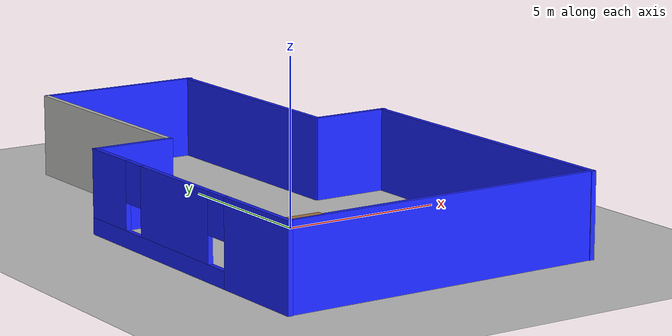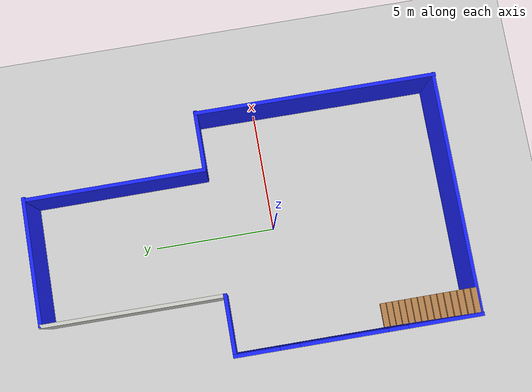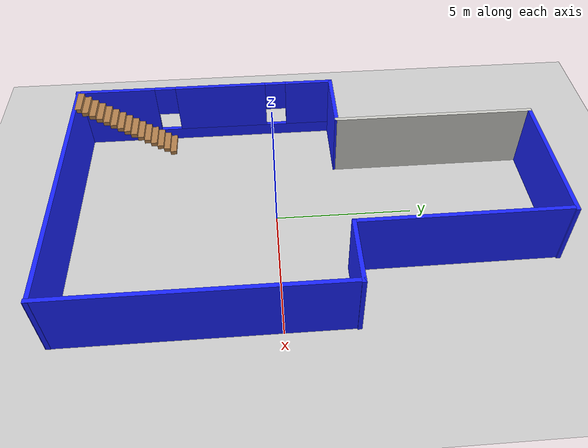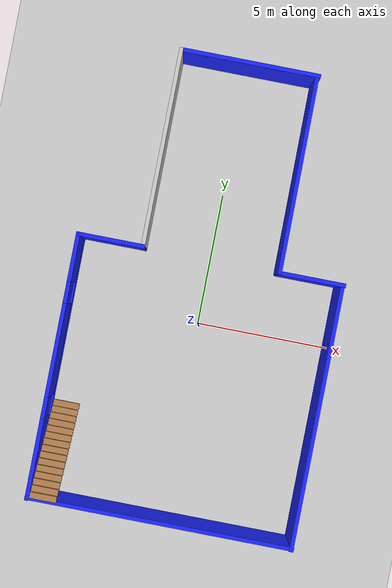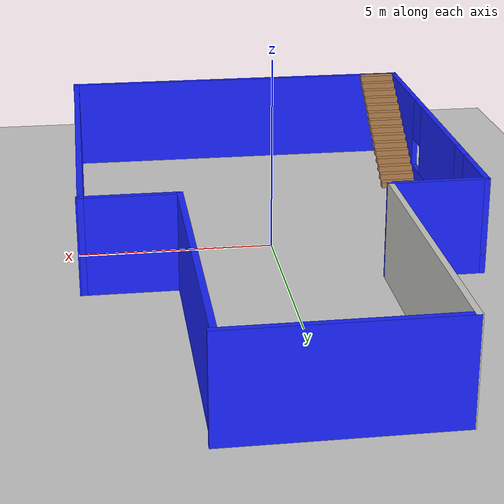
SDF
<sdf version="1.6">
 <world name="default">
  <model name="ground_plane">
   <static>1</static>
   <link name="link">
    <collision name="collision">
     <geometry><plane><normal>0 0 1</normal><size>100 100</size></plane></geometry>
     <surface><friction><ode><mu>100</mu><mu2>50</mu2></ode></friction></surface>
    </collision>
    <visual name="visual">
     <cast_shadows>0</cast_shadows>
     <geometry><plane><normal>0 0 1</normal><size>100 100</size></plane></geometry>
     <material>
      <script><uri>file://media/materials/scripts/gazebo.material</uri><name>Gazebo/Grey</name></script>
     </material>
    </visual>
   </link>
  </model>
  <model name="mySecondHouse_0">
   <link name="Stairs_0">
    <pose>-1.20208 -6.23735 0 0 -0 0</pose>
    <visual name="Stairs_0_Visual_0">
     <pose>-3.16225 4.7318 0.083333 0 -0 0</pose>
     <geometry><box><size>1 0.233333 0.166667</size></box></geometry>
     <material>
      <script><uri>file://media/materials/scripts/gazebo.material</uri><name>Gazebo/Wood</name></script>
      <ambient>1 1 1 1</ambient>
      <diffuse>1 1 1 1</diffuse>
      <specular>0.2 0.2 0.2 1</specular>
      <emissive>0 0 0 1</emissive>
     </material>
    </visual>
    <visual name="Stairs_0_Visual_1">
     <pose>-3.16225 4.49846 0.25 0 -0 0</pose>
     <geometry><box><size>1 0.233333 0.166667</size></box></geometry>
     <material>
      <script><uri>file://media/materials/scripts/gazebo.material</uri><name>Gazebo/Wood</name></script>
      <ambient>1 1 1 1</ambient>
      <diffuse>1 1 1 1</diffuse>
      <specular>0.2 0.2 0.2 1</specular>
      <emissive>0 0 0 1</emissive>
     </material>
    </visual>
    <visual name="Stairs_0_Visual_2">
     <pose>-3.16225 4.26513 0.416667 0 -0 0</pose>
     <geometry><box><size>1 0.233333 0.166667</size></box></geometry>
     <material>
      <script><uri>file://media/materials/scripts/gazebo.material</uri><name>Gazebo/Wood</name></script>
      <ambient>1 1 1 1</ambient>
      <diffuse>1 1 1 1</diffuse>
      <specular>0.2 0.2 0.2 1</specular>
      <emissive>0 0 0 1</emissive>
     </material>
    </visual>
    <visual name="Stairs_0_Visual_3">
     <pose>-3.16225 4.0318 0.583333 0 -0 0</pose>
     <geometry><box><size>1 0.233333 0.166667</size></box></geometry>
     <material>
      <script><uri>file://media/materials/scripts/gazebo.material</uri><name>Gazebo/Wood</name></script>
      <ambient>1 1 1 1</ambient>
      <diffuse>1 1 1 1</diffuse>
      <specular>0.2 0.2 0.2 1</specular>
      <emissive>0 0 0 1</emissive>
     </material>
    </visual>
    <visual name="Stairs_0_Visual_4">
     <pose>-3.16225 3.79846 0.75 0 -0 0</pose>
     <geometry><box><size>1 0.233333 0.166667</size></box></geometry>
     <material>
      <script><uri>file://media/materials/scripts/gazebo.material</uri><name>Gazebo/Wood</name></script>
      <ambient>1 1 1 1</ambient>
      <diffuse>1 1 1 1</diffuse>
      <specular>0.2 0.2 0.2 1</specular>
      <emissive>0 0 0 1</emissive>
     </material>
    </visual>
    <visual name="Stairs_0_Visual_5">
     <pose>-3.16225 3.56513 0.916667 0 -0 0</pose>
     <geometry><box><size>1 0.233333 0.166667</size></box></geometry>
     <material>
      <script><uri>file://media/materials/scripts/gazebo.material</uri><name>Gazebo/Wood</name></script>
      <ambient>1 1 1 1</ambient>
      <diffuse>1 1 1 1</diffuse>
      <specular>0.2 0.2 0.2 1</specular>
      <emissive>0 0 0 1</emissive>
     </material>
    </visual>
    <visual name="Stairs_0_Visual_6">
     <pose>-3.16225 3.3318 1.08333 0 -0 0</pose>
     <geometry><box><size>1 0.233333 0.166667</size></box></geometry>
     <material>
      <script><uri>file://media/materials/scripts/gazebo.material</uri><name>Gazebo/Wood</name></script>
      <ambient>1 1 1 1</ambient>
      <diffuse>1 1 1 1</diffuse>
      <specular>0.2 0.2 0.2 1</specular>
      <emissive>0 0 0 1</emissive>
     </material>
    </visual>
    <visual name="Stairs_0_Visual_7">
     <pose>-3.16225 3.09846 1.25 0 -0 0</pose>
     <geometry><box><size>1 0.233333 0.166667</size></box></geometry>
     <material>
      <script><uri>file://media/materials/scripts/gazebo.material</uri><name>Gazebo/Wood</name></script>
      <ambient>1 1 1 1</ambient>
      <diffuse>1 1 1 1</diffuse>
      <specular>0.2 0.2 0.2 1</specular>
      <emissive>0 0 0 1</emissive>
     </material>
    </visual>
    <visual name="Stairs_0_Visual_8">
     <pose>-3.16225 2.86513 1.41667 0 -0 0</pose>
     <geometry><box><size>1 0.233333 0.166667</size></box></geometry>
     <material>
      <script><uri>file://media/materials/scripts/gazebo.material</uri><name>Gazebo/Wood</name></script>
      <ambient>1 1 1 1</ambient>
      <diffuse>1 1 1 1</diffuse>
      <specular>0.2 0.2 0.2 1</specular>
      <emissive>0 0 0 1</emissive>
     </material>
    </visual>
    <visual name="Stairs_0_Visual_9">
     <pose>-3.16225 2.6318 1.58333 0 -0 0</pose>
     <geometry><box><size>1 0.233333 0.166667</size></box></geometry>
     <material>
      <script><uri>file://media/materials/scripts/gazebo.material</uri><name>Gazebo/Wood</name></script>
      <ambient>1 1 1 1</ambient>
      <diffuse>1 1 1 1</diffuse>
      <specular>0.2 0.2 0.2 1</specular>
      <emissive>0 0 0 1</emissive>
     </material>
    </visual>
    <visual name="Stairs_0_Visual_10">
     <pose>-3.16225 2.39846 1.75 0 -0 0</pose>
     <geometry><box><size>1 0.233333 0.166667</size></box></geometry>
     <material>
      <script><uri>file://media/materials/scripts/gazebo.material</uri><name>Gazebo/Wood</name></script>
      <ambient>1 1 1 1</ambient>
      <diffuse>1 1 1 1</diffuse>
      <specular>0.2 0.2 0.2 1</specular>
      <emissive>0 0 0 1</emissive>
     </material>
    </visual>
    <visual name="Stairs_0_Visual_11">
     <pose>-3.16225 2.16513 1.91667 0 -0 0</pose>
     <geometry><box><size>1 0.233333 0.166667</size></box></geometry>
     <material>
      <script><uri>file://media/materials/scripts/gazebo.material</uri><name>Gazebo/Wood</name></script>
      <ambient>1 1 1 1</ambient>
      <diffuse>1 1 1 1</diffuse>
      <specular>0.2 0.2 0.2 1</specular>
      <emissive>0 0 0 1</emissive>
     </material>
    </visual>
    <visual name="Stairs_0_Visual_12">
     <pose>-3.16225 1.9318 2.08333 0 -0 0</pose>
     <geometry><box><size>1 0.233333 0.166667</size></box></geometry>
     <material>
      <script><uri>file://media/materials/scripts/gazebo.material</uri><name>Gazebo/Wood</name></script>
      <ambient>1 1 1 1</ambient>
      <diffuse>1 1 1 1</diffuse>
      <specular>0.2 0.2 0.2 1</specular>
      <emissive>0 0 0 1</emissive>
     </material>
    </visual>
    <visual name="Stairs_0_Visual_13">
     <pose>-3.16225 1.69846 2.25 0 -0 0</pose>
     <geometry><box><size>1 0.233333 0.166667</size></box></geometry>
     <material>
      <script><uri>file://media/materials/scripts/gazebo.material</uri><name>Gazebo/Wood</name></script>
      <ambient>1 1 1 1</ambient>
      <diffuse>1 1 1 1</diffuse>
      <specular>0.2 0.2 0.2 1</specular>
      <emissive>0 0 0 1</emissive>
     </material>
    </visual>
    <visual name="Stairs_0_Visual_14">
     <pose>-3.16225 1.46513 2.41667 0 -0 0</pose>
     <geometry><box><size>1 0.233333 0.166667</size></box></geometry>
     <material>
      <script><uri>file://media/materials/scripts/gazebo.material</uri><name>Gazebo/Wood</name></script>
      <ambient>1 1 1 1</ambient>
      <diffuse>1 1 1 1</diffuse>
      <specular>0.2 0.2 0.2 1</specular>
      <emissive>0 0 0 1</emissive>
     </material>
    </visual>
    <collision name="Stairs_0_Collision_14">
     <pose>-3.16225 1.46513 2.41667 0 -0 0</pose>
     <geometry><box><size>1 0.233333 0.166667</size></box></geometry>
     <surface>
      <friction>
       <ode><mu>1</mu><mu2>1</mu2><fdir1>0 0 0</fdir1><slip1>0</slip1><slip2>0</slip2></ode>
       <torsional>
        <coefficient>1</coefficient>
        <patch_radius>0</patch_radius>
        <surface_radius>0</surface_radius>
        <use_patch_radius>1</use_patch_radius>
        <ode><slip>0</slip></ode>
       </torsional>
      </friction>
      <bounce><restitution_coefficient>0</restitution_coefficient><threshold>1e+06</threshold></bounce>
      <contact>
       <collide_without_contact>0</collide_without_contact>
       <collide_without_contact_bitmask>1</collide_without_contact_bitmask>
       <collide_bitmask>1</collide_bitmask>
       <ode>
        <soft_cfm>0</soft_cfm>
        <soft_erp>0.2</soft_erp>
        <kp>1e+13</kp>
        <kd>1</kd>
        <max_vel>0.01</max_vel>
        <min_depth>0</min_depth>
       </ode>
       <bullet>
        <split_impulse>1</split_impulse>
        <split_impulse_penetration_threshold>-0.01</split_impulse_penetration_threshold>
        <soft_cfm>0</soft_cfm>
        <soft_erp>0.2</soft_erp>
        <kp>1e+13</kp>
        <kd>1</kd>
       </bullet>
      </contact>
     </surface>
    </collision>
    <collision name="Stairs_0_Collision_0">
     <pose>-3.16225 4.7318 0.083333 0 -0 0</pose>
     <geometry><box><size>1 0.233333 0.166667</size></box></geometry>
     <surface>
      <friction>
       <ode><mu>1</mu><mu2>1</mu2><fdir1>0 0 0</fdir1><slip1>0</slip1><slip2>0</slip2></ode>
       <torsional>
        <coefficient>1</coefficient>
        <patch_radius>0</patch_radius>
        <surface_radius>0</surface_radius>
        <use_patch_radius>1</use_patch_radius>
        <ode><slip>0</slip></ode>
       </torsional>
      </friction>
      <bounce><restitution_coefficient>0</restitution_coefficient><threshold>1e+06</threshold></bounce>
      <contact>
       <collide_without_contact>0</collide_without_contact>
       <collide_without_contact_bitmask>1</collide_without_contact_bitmask>
       <collide_bitmask>1</collide_bitmask>
       <ode>
        <soft_cfm>0</soft_cfm>
        <soft_erp>0.2</soft_erp>
        <kp>1e+13</kp>
        <kd>1</kd>
        <max_vel>0.01</max_vel>
        <min_depth>0</min_depth>
       </ode>
       <bullet>
        <split_impulse>1</split_impulse>
        <split_impulse_penetration_threshold>-0.01</split_impulse_penetration_threshold>
        <soft_cfm>0</soft_cfm>
        <soft_erp>0.2</soft_erp>
        <kp>1e+13</kp>
        <kd>1</kd>
       </bullet>
      </contact>
     </surface>
    </collision>
    <collision name="Stairs_0_Collision_1">
     <pose>-3.16225 4.49846 0.25 0 -0 0</pose>
     <geometry><box><size>1 0.233333 0.166667</size></box></geometry>
     <surface>
      <friction>
       <ode><mu>1</mu><mu2>1</mu2><fdir1>0 0 0</fdir1><slip1>0</slip1><slip2>0</slip2></ode>
       <torsional>
        <coefficient>1</coefficient>
        <patch_radius>0</patch_radius>
        <surface_radius>0</surface_radius>
        <use_patch_radius>1</use_patch_radius>
        <ode><slip>0</slip></ode>
       </torsional>
      </friction>
      <bounce><restitution_coefficient>0</restitution_coefficient><threshold>1e+06</threshold></bounce>
      <contact>
       <collide_without_contact>0</collide_without_contact>
       <collide_without_contact_bitmask>1</collide_without_contact_bitmask>
       <collide_bitmask>1</collide_bitmask>
       <ode>
        <soft_cfm>0</soft_cfm>
        <soft_erp>0.2</soft_erp>
        <kp>1e+13</kp>
        <kd>1</kd>
        <max_vel>0.01</max_vel>
        <min_depth>0</min_depth>
       </ode>
       <bullet>
        <split_impulse>1</split_impulse>
        <split_impulse_penetration_threshold>-0.01</split_impulse_penetration_threshold>
        <soft_cfm>0</soft_cfm>
        <soft_erp>0.2</soft_erp>
        <kp>1e+13</kp>
        <kd>1</kd>
       </bullet>
      </contact>
     </surface>
    </collision>
    <collision name="Stairs_0_Collision_2">
     <pose>-3.16225 4.26513 0.416667 0 -0 0</pose>
     <geometry><box><size>1 0.233333 0.166667</size></box></geometry>
     <surface>
      <friction>
       <ode><mu>1</mu><mu2>1</mu2><fdir1>0 0 0</fdir1><slip1>0</slip1><slip2>0</slip2></ode>
       <torsional>
        <coefficient>1</coefficient>
        <patch_radius>0</patch_radius>
        <surface_radius>0</surface_radius>
        <use_patch_radius>1</use_patch_radius>
        <ode><slip>0</slip></ode>
       </torsional>
      </friction>
      <bounce><restitution_coefficient>0</restitution_coefficient><threshold>1e+06</threshold></bounce>
      <contact>
       <collide_without_contact>0</collide_without_contact>
       <collide_without_contact_bitmask>1</collide_without_contact_bitmask>
       <collide_bitmask>1</collide_bitmask>
       <ode>
        <soft_cfm>0</soft_cfm>
        <soft_erp>0.2</soft_erp>
        <kp>1e+13</kp>
        <kd>1</kd>
        <max_vel>0.01</max_vel>
        <min_depth>0</min_depth>
       </ode>
       <bullet>
        <split_impulse>1</split_impulse>
        <split_impulse_penetration_threshold>-0.01</split_impulse_penetration_threshold>
        <soft_cfm>0</soft_cfm>
        <soft_erp>0.2</soft_erp>
        <kp>1e+13</kp>
        <kd>1</kd>
       </bullet>
      </contact>
     </surface>
    </collision>
    <collision name="Stairs_0_Collision_3">
     <pose>-3.16225 4.0318 0.583333 0 -0 0</pose>
     <geometry><box><size>1 0.233333 0.166667</size></box></geometry>
     <surface>
      <friction>
       <ode><mu>1</mu><mu2>1</mu2><fdir1>0 0 0</fdir1><slip1>0</slip1><slip2>0</slip2></ode>
       <torsional>
        <coefficient>1</coefficient>
        <patch_radius>0</patch_radius>
        <surface_radius>0</surface_radius>
        <use_patch_radius>1</use_patch_radius>
        <ode><slip>0</slip></ode>
       </torsional>
      </friction>
      <bounce><restitution_coefficient>0</restitution_coefficient><threshold>1e+06</threshold></bounce>
      <contact>
       <collide_without_contact>0</collide_without_contact>
       <collide_without_contact_bitmask>1</collide_without_contact_bitmask>
       <collide_bitmask>1</collide_bitmask>
       <ode>
        <soft_cfm>0</soft_cfm>
        <soft_erp>0.2</soft_erp>
        <kp>1e+13</kp>
        <kd>1</kd>
        <max_vel>0.01</max_vel>
        <min_depth>0</min_depth>
       </ode>
       <bullet>
        <split_impulse>1</split_impulse>
        <split_impulse_penetration_threshold>-0.01</split_impulse_penetration_threshold>
        <soft_cfm>0</soft_cfm>
        <soft_erp>0.2</soft_erp>
        <kp>1e+13</kp>
        <kd>1</kd>
       </bullet>
      </contact>
     </surface>
    </collision>
    <collision name="Stairs_0_Collision_5">
     <pose>-3.16225 3.56513 0.916667 0 -0 0</pose>
     <geometry><box><size>1 0.233333 0.166667</size></box></geometry>
     <surface>
      <friction>
       <ode><mu>1</mu><mu2>1</mu2><fdir1>0 0 0</fdir1><slip1>0</slip1><slip2>0</slip2></ode>
       <torsional>
        <coefficient>1</coefficient>
        <patch_radius>0</patch_radius>
        <surface_radius>0</surface_radius>
        <use_patch_radius>1</use_patch_radius>
        <ode><slip>0</slip></ode>
       </torsional>
      </friction>
      <bounce><restitution_coefficient>0</restitution_coefficient><threshold>1e+06</threshold></bounce>
      <contact>
       <collide_without_contact>0</collide_without_contact>
       <collide_without_contact_bitmask>1</collide_without_contact_bitmask>
       <collide_bitmask>1</collide_bitmask>
       <ode>
        <soft_cfm>0</soft_cfm>
        <soft_erp>0.2</soft_erp>
        <kp>1e+13</kp>
        <kd>1</kd>
        <max_vel>0.01</max_vel>
        <min_depth>0</min_depth>
       </ode>
       <bullet>
        <split_impulse>1</split_impulse>
        <split_impulse_penetration_threshold>-0.01</split_impulse_penetration_threshold>
        <soft_cfm>0</soft_cfm>
        <soft_erp>0.2</soft_erp>
        <kp>1e+13</kp>
        <kd>1</kd>
       </bullet>
      </contact>
     </surface>
    </collision>
    <collision name="Stairs_0_Collision_6">
     <pose>-3.16225 3.3318 1.08333 0 -0 0</pose>
     <geometry><box><size>1 0.233333 0.166667</size></box></geometry>
     <surface>
      <friction>
       <ode><mu>1</mu><mu2>1</mu2><fdir1>0 0 0</fdir1><slip1>0</slip1><slip2>0</slip2></ode>
       <torsional>
        <coefficient>1</coefficient>
        <patch_radius>0</patch_radius>
        <surface_radius>0</surface_radius>
        <use_patch_radius>1</use_patch_radius>
        <ode><slip>0</slip></ode>
       </torsional>
      </friction>
      <bounce><restitution_coefficient>0</restitution_coefficient><threshold>1e+06</threshold></bounce>
      <contact>
       <collide_without_contact>0</collide_without_contact>
       <collide_without_contact_bitmask>1</collide_without_contact_bitmask>
       <collide_bitmask>1</collide_bitmask>
       <ode>
        <soft_cfm>0</soft_cfm>
        <soft_erp>0.2</soft_erp>
        <kp>1e+13</kp>
        <kd>1</kd>
        <max_vel>0.01</max_vel>
        <min_depth>0</min_depth>
       </ode>
       <bullet>
        <split_impulse>1</split_impulse>
        <split_impulse_penetration_threshold>-0.01</split_impulse_penetration_threshold>
        <soft_cfm>0</soft_cfm>
        <soft_erp>0.2</soft_erp>
        <kp>1e+13</kp>
        <kd>1</kd>
       </bullet>
      </contact>
     </surface>
    </collision>
    <collision name="Stairs_0_Collision_4">
     <pose>-3.16225 3.79846 0.75 0 -0 0</pose>
     <geometry><box><size>1 0.233333 0.166667</size></box></geometry>
     <surface>
      <friction>
       <ode><mu>1</mu><mu2>1</mu2><fdir1>0 0 0</fdir1><slip1>0</slip1><slip2>0</slip2></ode>
       <torsional>
        <coefficient>1</coefficient>
        <patch_radius>0</patch_radius>
        <surface_radius>0</surface_radius>
        <use_patch_radius>1</use_patch_radius>
        <ode><slip>0</slip></ode>
       </torsional>
      </friction>
      <bounce><restitution_coefficient>0</restitution_coefficient><threshold>1e+06</threshold></bounce>
      <contact>
       <collide_without_contact>0</collide_without_contact>
       <collide_without_contact_bitmask>1</collide_without_contact_bitmask>
       <collide_bitmask>1</collide_bitmask>
       <ode>
        <soft_cfm>0</soft_cfm>
        <soft_erp>0.2</soft_erp>
        <kp>1e+13</kp>
        <kd>1</kd>
        <max_vel>0.01</max_vel>
        <min_depth>0</min_depth>
       </ode>
       <bullet>
        <split_impulse>1</split_impulse>
        <split_impulse_penetration_threshold>-0.01</split_impulse_penetration_threshold>
        <soft_cfm>0</soft_cfm>
        <soft_erp>0.2</soft_erp>
        <kp>1e+13</kp>
        <kd>1</kd>
       </bullet>
      </contact>
     </surface>
    </collision>
    <collision name="Stairs_0_Collision_9">
     <pose>-3.16225 2.6318 1.58333 0 -0 0</pose>
     <geometry><box><size>1 0.233333 0.166667</size></box></geometry>
     <surface>
      <friction>
       <ode><mu>1</mu><mu2>1</mu2><fdir1>0 0 0</fdir1><slip1>0</slip1><slip2>0</slip2></ode>
       <torsional>
        <coefficient>1</coefficient>
        <patch_radius>0</patch_radius>
        <surface_radius>0</surface_radius>
        <use_patch_radius>1</use_patch_radius>
        <ode><slip>0</slip></ode>
       </torsional>
      </friction>
      <bounce><restitution_coefficient>0</restitution_coefficient><threshold>1e+06</threshold></bounce>
      <contact>
       <collide_without_contact>0</collide_without_contact>
       <collide_without_contact_bitmask>1</collide_without_contact_bitmask>
       <collide_bitmask>1</collide_bitmask>
       <ode>
        <soft_cfm>0</soft_cfm>
        <soft_erp>0.2</soft_erp>
        <kp>1e+13</kp>
        <kd>1</kd>
        <max_vel>0.01</max_vel>
        <min_depth>0</min_depth>
       </ode>
       <bullet>
        <split_impulse>1</split_impulse>
        <split_impulse_penetration_threshold>-0.01</split_impulse_penetration_threshold>
        <soft_cfm>0</soft_cfm>
        <soft_erp>0.2</soft_erp>
        <kp>1e+13</kp>
        <kd>1</kd>
       </bullet>
      </contact>
     </surface>
    </collision>
    <collision name="Stairs_0_Collision_7">
     <pose>-3.16225 3.09846 1.25 0 -0 0</pose>
     <geometry><box><size>1 0.233333 0.166667</size></box></geometry>
     <surface>
      <friction>
       <ode><mu>1</mu><mu2>1</mu2><fdir1>0 0 0</fdir1><slip1>0</slip1><slip2>0</slip2></ode>
       <torsional>
        <coefficient>1</coefficient>
        <patch_radius>0</patch_radius>
        <surface_radius>0</surface_radius>
        <use_patch_radius>1</use_patch_radius>
        <ode><slip>0</slip></ode>
       </torsional>
      </friction>
      <bounce><restitution_coefficient>0</restitution_coefficient><threshold>1e+06</threshold></bounce>
      <contact>
       <collide_without_contact>0</collide_without_contact>
       <collide_without_contact_bitmask>1</collide_without_contact_bitmask>
       <collide_bitmask>1</collide_bitmask>
       <ode>
        <soft_cfm>0</soft_cfm>
        <soft_erp>0.2</soft_erp>
        <kp>1e+13</kp>
        <kd>1</kd>
        <max_vel>0.01</max_vel>
        <min_depth>0</min_depth>
       </ode>
       <bullet>
        <split_impulse>1</split_impulse>
        <split_impulse_penetration_threshold>-0.01</split_impulse_penetration_threshold>
        <soft_cfm>0</soft_cfm>
        <soft_erp>0.2</soft_erp>
        <kp>1e+13</kp>
        <kd>1</kd>
       </bullet>
      </contact>
     </surface>
    </collision>
    <collision name="Stairs_0_Collision_8">
     <pose>-3.16225 2.86513 1.41667 0 -0 0</pose>
     <geometry><box><size>1 0.233333 0.166667</size></box></geometry>
     <surface>
      <friction>
       <ode><mu>1</mu><mu2>1</mu2><fdir1>0 0 0</fdir1><slip1>0</slip1><slip2>0</slip2></ode>
       <torsional>
        <coefficient>1</coefficient>
        <patch_radius>0</patch_radius>
        <surface_radius>0</surface_radius>
        <use_patch_radius>1</use_patch_radius>
        <ode><slip>0</slip></ode>
       </torsional>
      </friction>
      <bounce><restitution_coefficient>0</restitution_coefficient><threshold>1e+06</threshold></bounce>
      <contact>
       <collide_without_contact>0</collide_without_contact>
       <collide_without_contact_bitmask>1</collide_without_contact_bitmask>
       <collide_bitmask>1</collide_bitmask>
       <ode>
        <soft_cfm>0</soft_cfm>
        <soft_erp>0.2</soft_erp>
        <kp>1e+13</kp>
        <kd>1</kd>
        <max_vel>0.01</max_vel>
        <min_depth>0</min_depth>
       </ode>
       <bullet>
        <split_impulse>1</split_impulse>
        <split_impulse_penetration_threshold>-0.01</split_impulse_penetration_threshold>
        <soft_cfm>0</soft_cfm>
        <soft_erp>0.2</soft_erp>
        <kp>1e+13</kp>
        <kd>1</kd>
       </bullet>
      </contact>
     </surface>
    </collision>
    <collision name="Stairs_0_Collision_10">
     <pose>-3.16225 2.39846 1.75 0 -0 0</pose>
     <geometry><box><size>1 0.233333 0.166667</size></box></geometry>
     <surface>
      <friction>
       <ode><mu>1</mu><mu2>1</mu2><fdir1>0 0 0</fdir1><slip1>0</slip1><slip2>0</slip2></ode>
       <torsional>
        <coefficient>1</coefficient>
        <patch_radius>0</patch_radius>
        <surface_radius>0</surface_radius>
        <use_patch_radius>1</use_patch_radius>
        <ode><slip>0</slip></ode>
       </torsional>
      </friction>
      <bounce><restitution_coefficient>0</restitution_coefficient><threshold>1e+06</threshold></bounce>
      <contact>
       <collide_without_contact>0</collide_without_contact>
       <collide_without_contact_bitmask>1</collide_without_contact_bitmask>
       <collide_bitmask>1</collide_bitmask>
       <ode>
        <soft_cfm>0</soft_cfm>
        <soft_erp>0.2</soft_erp>
        <kp>1e+13</kp>
        <kd>1</kd>
        <max_vel>0.01</max_vel>
        <min_depth>0</min_depth>
       </ode>
       <bullet>
        <split_impulse>1</split_impulse>
        <split_impulse_penetration_threshold>-0.01</split_impulse_penetration_threshold>
        <soft_cfm>0</soft_cfm>
        <soft_erp>0.2</soft_erp>
        <kp>1e+13</kp>
        <kd>1</kd>
       </bullet>
      </contact>
     </surface>
    </collision>
    <collision name="Stairs_0_Collision_11">
     <pose>-3.16225 2.16513 1.91667 0 -0 0</pose>
     <geometry><box><size>1 0.233333 0.166667</size></box></geometry>
     <surface>
      <friction>
       <ode><mu>1</mu><mu2>1</mu2><fdir1>0 0 0</fdir1><slip1>0</slip1><slip2>0</slip2></ode>
       <torsional>
        <coefficient>1</coefficient>
        <patch_radius>0</patch_radius>
        <surface_radius>0</surface_radius>
        <use_patch_radius>1</use_patch_radius>
        <ode><slip>0</slip></ode>
       </torsional>
      </friction>
      <bounce><restitution_coefficient>0</restitution_coefficient><threshold>1e+06</threshold></bounce>
      <contact>
       <collide_without_contact>0</collide_without_contact>
       <collide_without_contact_bitmask>1</collide_without_contact_bitmask>
       <collide_bitmask>1</collide_bitmask>
       <ode>
        <soft_cfm>0</soft_cfm>
        <soft_erp>0.2</soft_erp>
        <kp>1e+13</kp>
        <kd>1</kd>
        <max_vel>0.01</max_vel>
        <min_depth>0</min_depth>
       </ode>
       <bullet>
        <split_impulse>1</split_impulse>
        <split_impulse_penetration_threshold>-0.01</split_impulse_penetration_threshold>
        <soft_cfm>0</soft_cfm>
        <soft_erp>0.2</soft_erp>
        <kp>1e+13</kp>
        <kd>1</kd>
       </bullet>
      </contact>
     </surface>
    </collision>
    <collision name="Stairs_0_Collision_12">
     <pose>-3.16225 1.9318 2.08333 0 -0 0</pose>
     <geometry><box><size>1 0.233333 0.166667</size></box></geometry>
     <surface>
      <friction>
       <ode><mu>1</mu><mu2>1</mu2><fdir1>0 0 0</fdir1><slip1>0</slip1><slip2>0</slip2></ode>
       <torsional>
        <coefficient>1</coefficient>
        <patch_radius>0</patch_radius>
        <surface_radius>0</surface_radius>
        <use_patch_radius>1</use_patch_radius>
        <ode><slip>0</slip></ode>
       </torsional>
      </friction>
      <bounce><restitution_coefficient>0</restitution_coefficient><threshold>1e+06</threshold></bounce>
      <contact>
       <collide_without_contact>0</collide_without_contact>
       <collide_without_contact_bitmask>1</collide_without_contact_bitmask>
       <collide_bitmask>1</collide_bitmask>
       <ode>
        <soft_cfm>0</soft_cfm>
        <soft_erp>0.2</soft_erp>
        <kp>1e+13</kp>
        <kd>1</kd>
        <max_vel>0.01</max_vel>
        <min_depth>0</min_depth>
       </ode>
       <bullet>
        <split_impulse>1</split_impulse>
        <split_impulse_penetration_threshold>-0.01</split_impulse_penetration_threshold>
        <soft_cfm>0</soft_cfm>
        <soft_erp>0.2</soft_erp>
        <kp>1e+13</kp>
        <kd>1</kd>
       </bullet>
      </contact>
     </surface>
    </collision>
    <collision name="Stairs_0_Collision_13">
     <pose>-3.16225 1.69846 2.25 0 -0 0</pose>
     <geometry><box><size>1 0.233333 0.166667</size></box></geometry>
     <surface>
      <friction>
       <ode><mu>1</mu><mu2>1</mu2><fdir1>0 0 0</fdir1><slip1>0</slip1><slip2>0</slip2></ode>
       <torsional>
        <coefficient>1</coefficient>
        <patch_radius>0</patch_radius>
        <surface_radius>0</surface_radius>
        <use_patch_radius>1</use_patch_radius>
        <ode><slip>0</slip></ode>
       </torsional>
      </friction>
      <bounce><restitution_coefficient>0</restitution_coefficient><threshold>1e+06</threshold></bounce>
      <contact>
       <collide_without_contact>0</collide_without_contact>
       <collide_without_contact_bitmask>1</collide_without_contact_bitmask>
       <collide_bitmask>1</collide_bitmask>
       <ode>
        <soft_cfm>0</soft_cfm>
        <soft_erp>0.2</soft_erp>
        <kp>1e+13</kp>
        <kd>1</kd>
        <max_vel>0.01</max_vel>
        <min_depth>0</min_depth>
       </ode>
       <bullet>
        <split_impulse>1</split_impulse>
        <split_impulse_penetration_threshold>-0.01</split_impulse_penetration_threshold>
        <soft_cfm>0</soft_cfm>
        <soft_erp>0.2</soft_erp>
        <kp>1e+13</kp>
        <kd>1</kd>
       </bullet>
      </contact>
     </surface>
    </collision>
   </link>
   <link name="Wall_26">
    <pose>-3.71974 4.925 0 0 -0 0</pose>
    <visual name="Wall_26_Visual">
     <pose>0 0 1.25 0 -0 0</pose>
     <geometry><box><size>2.5 0.15 2.5</size></box></geometry>
     <material>
      <script><uri>file://media/materials/scripts/gazebo.material</uri><name>Gazebo/Grey</name></script>
      <ambient>0.0980392 0.141176 1 1</ambient>
      <diffuse>0.7 0.7 0.7 1</diffuse>
      <specular>0.01 0.01 0.01 1</specular>
      <emissive>0 0 0 1</emissive>
     </material>
    </visual>
    <collision name="Wall_26_Collision">
     <pose>0 0 1.25 0 -0 0</pose>
     <geometry><box><size>2.5 0.15 2.5</size></box></geometry>
     <surface>
      <friction>
       <ode><mu>1</mu><mu2>1</mu2><fdir1>0 0 0</fdir1><slip1>0</slip1><slip2>0</slip2></ode>
       <torsional>
        <coefficient>1</coefficient>
        <patch_radius>0</patch_radius>
        <surface_radius>0</surface_radius>
        <use_patch_radius>1</use_patch_radius>
        <ode><slip>0</slip></ode>
       </torsional>
      </friction>
      <bounce><restitution_coefficient>0</restitution_coefficient><threshold>1e+06</threshold></bounce>
      <contact>
       <collide_without_contact>0</collide_without_contact>
       <collide_without_contact_bitmask>1</collide_without_contact_bitmask>
       <collide_bitmask>1</collide_bitmask>
       <ode>
        <soft_cfm>0</soft_cfm>
        <soft_erp>0.2</soft_erp>
        <kp>1e+13</kp>
        <kd>1</kd>
        <max_vel>0.01</max_vel>
        <min_depth>0</min_depth>
       </ode>
       <bullet>
        <split_impulse>1</split_impulse>
        <split_impulse_penetration_threshold>-0.01</split_impulse_penetration_threshold>
        <soft_cfm>0</soft_cfm>
        <soft_erp>0.2</soft_erp>
        <kp>1e+13</kp>
        <kd>1</kd>
       </bullet>
      </contact>
     </surface>
    </collision>
   </link>
   <link name="Wall_27">
    <pose>-2.54213 8.59143 0 0 0 -1.57151</pose>
    <inertial>
     <inertia><ixx>nan</ixx><ixy>0</ixy><ixz>0</ixz><iyy>nan</iyy><iyz>0</iyz><izz>nan</izz></inertia>
     <mass>0</mass>
    </inertial>
    <visual name="Wall_27_Visual">
     <pose>0 0 1.25 0 -0 0</pose>
     <geometry><box><size>7.48003 0.15 2.5</size></box></geometry>
     <material>
      <script><uri>file://media/materials/scripts/gazebo.material</uri><name>Gazebo/CeilingTiled</name></script>
      <ambient>0.0980392 0.141176 1 1</ambient>
      <diffuse>1 1 1 1</diffuse>
      <specular>0 0 0 1</specular>
      <emissive>0 0 0 1</emissive>
     </material>
    </visual>
    <collision name="Wall_27_Collision">
     <pose>0 0 1.25 0 -0 0</pose>
     <geometry><box><size>7.48003 0.15 2.5</size></box></geometry>
     <surface>
      <friction>
       <ode><mu>1</mu><mu2>1</mu2><fdir1>0 0 0</fdir1><slip1>0</slip1><slip2>0</slip2></ode>
       <torsional>
        <coefficient>1</coefficient>
        <patch_radius>0</patch_radius>
        <surface_radius>0</surface_radius>
        <use_patch_radius>1</use_patch_radius>
        <ode><slip>0</slip></ode>
       </torsional>
      </friction>
      <bounce><restitution_coefficient>0</restitution_coefficient><threshold>1e+06</threshold></bounce>
      <contact>
       <collide_without_contact>0</collide_without_contact>
       <collide_without_contact_bitmask>1</collide_without_contact_bitmask>
       <collide_bitmask>1</collide_bitmask>
       <ode>
        <soft_cfm>0</soft_cfm>
        <soft_erp>0.2</soft_erp>
        <kp>1e+13</kp>
        <kd>1</kd>
        <max_vel>0.01</max_vel>
        <min_depth>0</min_depth>
       </ode>
       <bullet>
        <split_impulse>1</split_impulse>
        <split_impulse_penetration_threshold>-0.01</split_impulse_penetration_threshold>
        <soft_cfm>0</soft_cfm>
        <soft_erp>0.2</soft_erp>
        <kp>1e+13</kp>
        <kd>1</kd>
       </bullet>
      </contact>
     </surface>
    </collision>
   </link>
   <link name="Wall_28">
    <pose>0.035567 12.2589 0 0 -0 0</pose>
    <visual name="Wall_28_Visual">
     <pose>0 0 1.25 0 -0 0</pose>
     <geometry><box><size>5.25 0.15 2.5</size></box></geometry>
     <material>
      <script><uri>file://media/materials/scripts/gazebo.material</uri><name>Gazebo/Grey</name></script>
      <ambient>0.0980392 0.141176 1 1</ambient>
      <diffuse>0.7 0.7 0.7 1</diffuse>
      <specular>0.01 0.01 0.01 1</specular>
      <emissive>0 0 0 1</emissive>
     </material>
    </visual>
    <collision name="Wall_28_Collision">
     <pose>0 0 1.25 0 -0 0</pose>
     <geometry><box><size>5.25 0.15 2.5</size></box></geometry>
     <surface>
      <friction>
       <ode><mu>1</mu><mu2>1</mu2><fdir1>0 0 0</fdir1><slip1>0</slip1><slip2>0</slip2></ode>
       <torsional>
        <coefficient>1</coefficient>
        <patch_radius>0</patch_radius>
        <surface_radius>0</surface_radius>
        <use_patch_radius>1</use_patch_radius>
        <ode><slip>0</slip></ode>
       </torsional>
      </friction>
      <bounce><restitution_coefficient>0</restitution_coefficient><threshold>1e+06</threshold></bounce>
      <contact>
       <collide_without_contact>0</collide_without_contact>
       <collide_without_contact_bitmask>1</collide_without_contact_bitmask>
       <collide_bitmask>1</collide_bitmask>
       <ode>
        <soft_cfm>0</soft_cfm>
        <soft_erp>0.2</soft_erp>
        <kp>1e+13</kp>
        <kd>1</kd>
        <max_vel>0.01</max_vel>
        <min_depth>0</min_depth>
       </ode>
       <bullet>
        <split_impulse>1</split_impulse>
        <split_impulse_penetration_threshold>-0.01</split_impulse_penetration_threshold>
        <soft_cfm>0</soft_cfm>
        <soft_erp>0.2</soft_erp>
        <kp>1e+13</kp>
        <kd>1</kd>
       </bullet>
      </contact>
     </surface>
    </collision>
   </link>
   <link name="Wall_29">
    <pose>2.54684 8.53962 0 0 -0 1.57417</pose>
    <inertial>
     <inertia><ixx>nan</ixx><ixy>0</ixy><ixz>0</ixz><iyy>nan</iyy><iyz>0</iyz><izz>nan</izz></inertia>
     <mass>0</mass>
    </inertial>
    <visual name="Wall_29_Visual">
     <pose>0 0 1.25 0 -0 0</pose>
     <geometry><box><size>7.33027 0.15 2.5</size></box></geometry>
     <material>
      <script><uri>file://media/materials/scripts/gazebo.material</uri><name>Gazebo/Grey</name></script>
      <ambient>0.0980392 0.141176 1 1</ambient>
      <diffuse>0.7 0.7 0.7 1</diffuse>
      <specular>0.01 0.01 0.01 1</specular>
      <emissive>0 0 0 1</emissive>
     </material>
    </visual>
    <collision name="Wall_29_Collision">
     <pose>0 0 1.25 0 -0 0</pose>
     <geometry><box><size>7.33027 0.15 2.5</size></box></geometry>
     <surface>
      <friction>
       <ode><mu>1</mu><mu2>1</mu2><fdir1>0 0 0</fdir1><slip1>0</slip1><slip2>0</slip2></ode>
       <torsional>
        <coefficient>1</coefficient>
        <patch_radius>0</patch_radius>
        <surface_radius>0</surface_radius>
        <use_patch_radius>1</use_patch_radius>
        <ode><slip>0</slip></ode>
       </torsional>
      </friction>
      <bounce><restitution_coefficient>0</restitution_coefficient><threshold>1e+06</threshold></bounce>
      <contact>
       <collide_without_contact>0</collide_without_contact>
       <collide_without_contact_bitmask>1</collide_without_contact_bitmask>
       <collide_bitmask>1</collide_bitmask>
       <ode>
        <soft_cfm>0</soft_cfm>
        <soft_erp>0.2</soft_erp>
        <kp>1e+13</kp>
        <kd>1</kd>
        <max_vel>0.01</max_vel>
        <min_depth>0</min_depth>
       </ode>
       <bullet>
        <split_impulse>1</split_impulse>
        <split_impulse_penetration_threshold>-0.01</split_impulse_penetration_threshold>
        <soft_cfm>0</soft_cfm>
        <soft_erp>0.2</soft_erp>
        <kp>1e+13</kp>
        <kd>1</kd>
       </bullet>
      </contact>
     </surface>
    </collision>
   </link>
   <link name="Wall_30">
    <pose>3.77003 4.925 0 0 -0 0</pose>
    <visual name="Wall_30_Visual">
     <pose>0 0 1.25 0 -0 0</pose>
     <geometry><box><size>2.5 0.15 2.5</size></box></geometry>
     <material>
      <script><uri>file://media/materials/scripts/gazebo.material</uri><name>Gazebo/Grey</name></script>
      <ambient>0.0980392 0.141176 1 1</ambient>
      <diffuse>0.7 0.7 0.7 1</diffuse>
      <specular>0.01 0.01 0.01 1</specular>
      <emissive>0 0 0 1</emissive>
     </material>
    </visual>
    <collision name="Wall_30_Collision">
     <pose>0 0 1.25 0 -0 0</pose>
     <geometry><box><size>2.5 0.15 2.5</size></box></geometry>
     <surface>
      <friction>
       <ode><mu>1</mu><mu2>1</mu2><fdir1>0 0 0</fdir1><slip1>0</slip1><slip2>0</slip2></ode>
       <torsional>
        <coefficient>1</coefficient>
        <patch_radius>0</patch_radius>
        <surface_radius>0</surface_radius>
        <use_patch_radius>1</use_patch_radius>
        <ode><slip>0</slip></ode>
       </torsional>
      </friction>
      <bounce><restitution_coefficient>0</restitution_coefficient><threshold>1e+06</threshold></bounce>
      <contact>
       <collide_without_contact>0</collide_without_contact>
       <collide_without_contact_bitmask>1</collide_without_contact_bitmask>
       <collide_bitmask>1</collide_bitmask>
       <ode>
        <soft_cfm>0</soft_cfm>
        <soft_erp>0.2</soft_erp>
        <kp>1e+13</kp>
        <kd>1</kd>
        <max_vel>0.01</max_vel>
        <min_depth>0</min_depth>
       </ode>
       <bullet>
        <split_impulse>1</split_impulse>
        <split_impulse_penetration_threshold>-0.01</split_impulse_penetration_threshold>
        <soft_cfm>0</soft_cfm>
        <soft_erp>0.2</soft_erp>
        <kp>1e+13</kp>
        <kd>1</kd>
       </bullet>
      </contact>
     </surface>
    </collision>
   </link>
   <link name="Wall_31">
    <pose>4.90715 0 0 0 0 -1.57118</pose>
    <visual name="Wall_31_Visual">
     <pose>0 0 1.25 0 -0 0</pose>
     <geometry><box><size>10.0006 0.15 2.5</size></box></geometry>
     <material>
      <script><uri>file://media/materials/scripts/gazebo.material</uri><name>Gazebo/Grey</name></script>
      <ambient>0.0980392 0.141176 1 1</ambient>
      <diffuse>0.7 0.7 0.7 1</diffuse>
      <specular>0.01 0.01 0.01 1</specular>
      <emissive>0 0 0 1</emissive>
     </material>
    </visual>
    <collision name="Wall_31_Collision">
     <pose>0 0 1.25 0 -0 0</pose>
     <geometry><box><size>10.0006 0.15 2.5</size></box></geometry>
     <surface>
      <friction>
       <ode><mu>1</mu><mu2>1</mu2><fdir1>0 0 0</fdir1><slip1>0</slip1><slip2>0</slip2></ode>
       <torsional>
        <coefficient>1</coefficient>
        <patch_radius>0</patch_radius>
        <surface_radius>0</surface_radius>
        <use_patch_radius>1</use_patch_radius>
        <ode><slip>0</slip></ode>
       </torsional>
      </friction>
      <bounce><restitution_coefficient>0</restitution_coefficient><threshold>1e+06</threshold></bounce>
      <contact>
       <collide_without_contact>0</collide_without_contact>
       <collide_without_contact_bitmask>1</collide_without_contact_bitmask>
       <collide_bitmask>1</collide_bitmask>
       <ode>
        <soft_cfm>0</soft_cfm>
        <soft_erp>0.2</soft_erp>
        <kp>1e+13</kp>
        <kd>1</kd>
        <max_vel>0.01</max_vel>
        <min_depth>0</min_depth>
       </ode>
       <bullet>
        <split_impulse>1</split_impulse>
        <split_impulse_penetration_threshold>-0.01</split_impulse_penetration_threshold>
        <soft_cfm>0</soft_cfm>
        <soft_erp>0.2</soft_erp>
        <kp>1e+13</kp>
        <kd>1</kd>
       </bullet>
      </contact>
     </surface>
    </collision>
   </link>
   <link name="Wall_32">
    <pose>-0.007443 -4.89795 0 0 -0 3.14156</pose>
    <visual name="Wall_32_Visual">
     <pose>0 0 1.25 0 -0 0</pose>
     <geometry><box><size>10 0.15 2.5</size></box></geometry>
     <material>
      <script><uri>file://media/materials/scripts/gazebo.material</uri><name>Gazebo/Grey</name></script>
      <ambient>0.0980392 0.141176 1 1</ambient>
      <diffuse>0.7 0.7 0.7 1</diffuse>
      <specular>0.01 0.01 0.01 1</specular>
      <emissive>0 0 0 1</emissive>
     </material>
    </visual>
    <collision name="Wall_32_Collision">
     <pose>0 0 1.25 0 -0 0</pose>
     <geometry><box><size>10 0.15 2.5</size></box></geometry>
     <surface>
      <friction>
       <ode><mu>1</mu><mu2>1</mu2><fdir1>0 0 0</fdir1><slip1>0</slip1><slip2>0</slip2></ode>
       <torsional>
        <coefficient>1</coefficient>
        <patch_radius>0</patch_radius>
        <surface_radius>0</surface_radius>
        <use_patch_radius>1</use_patch_radius>
        <ode><slip>0</slip></ode>
       </torsional>
      </friction>
      <bounce><restitution_coefficient>0</restitution_coefficient><threshold>1e+06</threshold></bounce>
      <contact>
       <collide_without_contact>0</collide_without_contact>
       <collide_without_contact_bitmask>1</collide_without_contact_bitmask>
       <collide_bitmask>1</collide_bitmask>
       <ode>
        <soft_cfm>0</soft_cfm>
        <soft_erp>0.2</soft_erp>
        <kp>1e+13</kp>
        <kd>1</kd>
        <max_vel>0.01</max_vel>
        <min_depth>0</min_depth>
       </ode>
       <bullet>
        <split_impulse>1</split_impulse>
        <split_impulse_penetration_threshold>-0.01</split_impulse_penetration_threshold>
        <soft_cfm>0</soft_cfm>
        <soft_erp>0.2</soft_erp>
        <kp>1e+13</kp>
        <kd>1</kd>
       </bullet>
      </contact>
     </surface>
    </collision>
   </link>
   <link name="Wall_33">
    <pose>-4.94503 0.000313 0 0 -0 1.5708</pose>
    <visual name="Wall_33_Visual_0">
     <pose>-3.48148 0 1.25 0 -0 0</pose>
     <geometry><box><size>3.03703 0.15 2.5</size></box></geometry>
     <material>
      <script><uri>file://media/materials/scripts/gazebo.material</uri><name>Gazebo/Grey</name></script>
      <ambient>0.0980392 0.141176 1 1</ambient>
      <diffuse>0.7 0.7 0.7 1</diffuse>
      <specular>0.01 0.01 0.01 1</specular>
      <emissive>0 0 0 1</emissive>
     </material>
    </visual>
    <visual name="Wall_33_Visual_1">
     <pose>1.51852 0 0.25 0 -0 0</pose>
     <geometry><box><size>6.96297 0.15 0.5</size></box></geometry>
     <material>
      <script><uri>file://media/materials/scripts/gazebo.material</uri><name>Gazebo/Grey</name></script>
      <ambient>0.0980392 0.141176 1 1</ambient>
      <diffuse>0.7 0.7 0.7 1</diffuse>
      <specular>0.01 0.01 0.01 1</specular>
      <emissive>0 0 0 1</emissive>
     </material>
    </visual>
    <visual name="Wall_33_Visual_2">
     <pose>0.590138 0 1.5 0 -0 0</pose>
     <geometry><box><size>3.50621 0.15 2</size></box></geometry>
     <material>
      <script><uri>file://media/materials/scripts/gazebo.material</uri><name>Gazebo/Grey</name></script>
      <ambient>0.0980392 0.141176 1 1</ambient>
      <diffuse>0.7 0.7 0.7 1</diffuse>
      <specular>0.01 0.01 0.01 1</specular>
      <emissive>0 0 0 1</emissive>
     </material>
    </visual>
    <visual name="Wall_33_Visual_3">
     <pose>4.07162 0 1.5 0 -0 0</pose>
     <geometry><box><size>1.85676 0.15 2</size></box></geometry>
     <material>
      <script><uri>file://media/materials/scripts/gazebo.material</uri><name>Gazebo/Grey</name></script>
      <ambient>0.0980392 0.141176 1 1</ambient>
      <diffuse>0.7 0.7 0.7 1</diffuse>
      <specular>0.01 0.01 0.01 1</specular>
      <emissive>0 0 0 1</emissive>
     </material>
    </visual>
    <visual name="Wall_33_Visual_4">
     <pose>-1.56297 0 1.9 0 -0 0</pose>
     <geometry><box><size>0.8 0.15 1.2</size></box></geometry>
     <material>
      <script><uri>file://media/materials/scripts/gazebo.material</uri><name>Gazebo/Grey</name></script>
      <ambient>0.0980392 0.141176 1 1</ambient>
      <diffuse>0.7 0.7 0.7 1</diffuse>
      <specular>0.01 0.01 0.01 1</specular>
      <emissive>0 0 0 1</emissive>
     </material>
    </visual>
    <visual name="Wall_33_Visual_5">
     <pose>2.74324 0 1.9 0 -0 0</pose>
     <geometry><box><size>0.8 0.15 1.2</size></box></geometry>
     <material>
      <script><uri>file://media/materials/scripts/gazebo.material</uri><name>Gazebo/Grey</name></script>
      <ambient>0.0980392 0.141176 1 1</ambient>
      <diffuse>0.7 0.7 0.7 1</diffuse>
      <specular>0.01 0.01 0.01 1</specular>
      <emissive>0 0 0 1</emissive>
     </material>
    </visual>
    <collision name="Wall_33_Collision_5">
     <pose>2.74324 0 1.9 0 -0 0</pose>
     <geometry><box><size>0.8 0.15 1.2</size></box></geometry>
     <surface>
      <friction>
       <ode><mu>1</mu><mu2>1</mu2><fdir1>0 0 0</fdir1><slip1>0</slip1><slip2>0</slip2></ode>
       <torsional>
        <coefficient>1</coefficient>
        <patch_radius>0</patch_radius>
        <surface_radius>0</surface_radius>
        <use_patch_radius>1</use_patch_radius>
        <ode><slip>0</slip></ode>
       </torsional>
      </friction>
      <bounce><restitution_coefficient>0</restitution_coefficient><threshold>1e+06</threshold></bounce>
      <contact>
       <collide_without_contact>0</collide_without_contact>
       <collide_without_contact_bitmask>1</collide_without_contact_bitmask>
       <collide_bitmask>1</collide_bitmask>
       <ode>
        <soft_cfm>0</soft_cfm>
        <soft_erp>0.2</soft_erp>
        <kp>1e+13</kp>
        <kd>1</kd>
        <max_vel>0.01</max_vel>
        <min_depth>0</min_depth>
       </ode>
       <bullet>
        <split_impulse>1</split_impulse>
        <split_impulse_penetration_threshold>-0.01</split_impulse_penetration_threshold>
        <soft_cfm>0</soft_cfm>
        <soft_erp>0.2</soft_erp>
        <kp>1e+13</kp>
        <kd>1</kd>
       </bullet>
      </contact>
     </surface>
    </collision>
    <collision name="Wall_33_Collision_0">
     <pose>-3.48148 0 1.25 0 -0 0</pose>
     <geometry><box><size>3.03703 0.15 2.5</size></box></geometry>
     <surface>
      <friction>
       <ode><mu>1</mu><mu2>1</mu2><fdir1>0 0 0</fdir1><slip1>0</slip1><slip2>0</slip2></ode>
       <torsional>
        <coefficient>1</coefficient>
        <patch_radius>0</patch_radius>
        <surface_radius>0</surface_radius>
        <use_patch_radius>1</use_patch_radius>
        <ode><slip>0</slip></ode>
       </torsional>
      </friction>
      <bounce><restitution_coefficient>0</restitution_coefficient><threshold>1e+06</threshold></bounce>
      <contact>
       <collide_without_contact>0</collide_without_contact>
       <collide_without_contact_bitmask>1</collide_without_contact_bitmask>
       <collide_bitmask>1</collide_bitmask>
       <ode>
        <soft_cfm>0</soft_cfm>
        <soft_erp>0.2</soft_erp>
        <kp>1e+13</kp>
        <kd>1</kd>
        <max_vel>0.01</max_vel>
        <min_depth>0</min_depth>
       </ode>
       <bullet>
        <split_impulse>1</split_impulse>
        <split_impulse_penetration_threshold>-0.01</split_impulse_penetration_threshold>
        <soft_cfm>0</soft_cfm>
        <soft_erp>0.2</soft_erp>
        <kp>1e+13</kp>
        <kd>1</kd>
       </bullet>
      </contact>
     </surface>
    </collision>
    <collision name="Wall_33_Collision_1">
     <pose>1.51852 0 0.25 0 -0 0</pose>
     <geometry><box><size>6.96297 0.15 0.5</size></box></geometry>
     <surface>
      <friction>
       <ode><mu>1</mu><mu2>1</mu2><fdir1>0 0 0</fdir1><slip1>0</slip1><slip2>0</slip2></ode>
       <torsional>
        <coefficient>1</coefficient>
        <patch_radius>0</patch_radius>
        <surface_radius>0</surface_radius>
        <use_patch_radius>1</use_patch_radius>
        <ode><slip>0</slip></ode>
       </torsional>
      </friction>
      <bounce><restitution_coefficient>0</restitution_coefficient><threshold>1e+06</threshold></bounce>
      <contact>
       <collide_without_contact>0</collide_without_contact>
       <collide_without_contact_bitmask>1</collide_without_contact_bitmask>
       <collide_bitmask>1</collide_bitmask>
       <ode>
        <soft_cfm>0</soft_cfm>
        <soft_erp>0.2</soft_erp>
        <kp>1e+13</kp>
        <kd>1</kd>
        <max_vel>0.01</max_vel>
        <min_depth>0</min_depth>
       </ode>
       <bullet>
        <split_impulse>1</split_impulse>
        <split_impulse_penetration_threshold>-0.01</split_impulse_penetration_threshold>
        <soft_cfm>0</soft_cfm>
        <soft_erp>0.2</soft_erp>
        <kp>1e+13</kp>
        <kd>1</kd>
       </bullet>
      </contact>
     </surface>
    </collision>
    <collision name="Wall_33_Collision_2">
     <pose>0.590138 0 1.5 0 -0 0</pose>
     <geometry><box><size>3.50621 0.15 2</size></box></geometry>
     <surface>
      <friction>
       <ode><mu>1</mu><mu2>1</mu2><fdir1>0 0 0</fdir1><slip1>0</slip1><slip2>0</slip2></ode>
       <torsional>
        <coefficient>1</coefficient>
        <patch_radius>0</patch_radius>
        <surface_radius>0</surface_radius>
        <use_patch_radius>1</use_patch_radius>
        <ode><slip>0</slip></ode>
       </torsional>
      </friction>
      <bounce><restitution_coefficient>0</restitution_coefficient><threshold>1e+06</threshold></bounce>
      <contact>
       <collide_without_contact>0</collide_without_contact>
       <collide_without_contact_bitmask>1</collide_without_contact_bitmask>
       <collide_bitmask>1</collide_bitmask>
       <ode>
        <soft_cfm>0</soft_cfm>
        <soft_erp>0.2</soft_erp>
        <kp>1e+13</kp>
        <kd>1</kd>
        <max_vel>0.01</max_vel>
        <min_depth>0</min_depth>
       </ode>
       <bullet>
        <split_impulse>1</split_impulse>
        <split_impulse_penetration_threshold>-0.01</split_impulse_penetration_threshold>
        <soft_cfm>0</soft_cfm>
        <soft_erp>0.2</soft_erp>
        <kp>1e+13</kp>
        <kd>1</kd>
       </bullet>
      </contact>
     </surface>
    </collision>
    <collision name="Wall_33_Collision_3">
     <pose>4.07162 0 1.5 0 -0 0</pose>
     <geometry><box><size>1.85676 0.15 2</size></box></geometry>
     <surface>
      <friction>
       <ode><mu>1</mu><mu2>1</mu2><fdir1>0 0 0</fdir1><slip1>0</slip1><slip2>0</slip2></ode>
       <torsional>
        <coefficient>1</coefficient>
        <patch_radius>0</patch_radius>
        <surface_radius>0</surface_radius>
        <use_patch_radius>1</use_patch_radius>
        <ode><slip>0</slip></ode>
       </torsional>
      </friction>
      <bounce><restitution_coefficient>0</restitution_coefficient><threshold>1e+06</threshold></bounce>
      <contact>
       <collide_without_contact>0</collide_without_contact>
       <collide_without_contact_bitmask>1</collide_without_contact_bitmask>
       <collide_bitmask>1</collide_bitmask>
       <ode>
        <soft_cfm>0</soft_cfm>
        <soft_erp>0.2</soft_erp>
        <kp>1e+13</kp>
        <kd>1</kd>
        <max_vel>0.01</max_vel>
        <min_depth>0</min_depth>
       </ode>
       <bullet>
        <split_impulse>1</split_impulse>
        <split_impulse_penetration_threshold>-0.01</split_impulse_penetration_threshold>
        <soft_cfm>0</soft_cfm>
        <soft_erp>0.2</soft_erp>
        <kp>1e+13</kp>
        <kd>1</kd>
       </bullet>
      </contact>
     </surface>
    </collision>
    <collision name="Wall_33_Collision_4">
     <pose>-1.56297 0 1.9 0 -0 0</pose>
     <geometry><box><size>0.8 0.15 1.2</size></box></geometry>
     <surface>
      <friction>
       <ode><mu>1</mu><mu2>1</mu2><fdir1>0 0 0</fdir1><slip1>0</slip1><slip2>0</slip2></ode>
       <torsional>
        <coefficient>1</coefficient>
        <patch_radius>0</patch_radius>
        <surface_radius>0</surface_radius>
        <use_patch_radius>1</use_patch_radius>
        <ode><slip>0</slip></ode>
       </torsional>
      </friction>
      <bounce><restitution_coefficient>0</restitution_coefficient><threshold>1e+06</threshold></bounce>
      <contact>
       <collide_without_contact>0</collide_without_contact>
       <collide_without_contact_bitmask>1</collide_without_contact_bitmask>
       <collide_bitmask>1</collide_bitmask>
       <ode>
        <soft_cfm>0</soft_cfm>
        <soft_erp>0.2</soft_erp>
        <kp>1e+13</kp>
        <kd>1</kd>
        <max_vel>0.01</max_vel>
        <min_depth>0</min_depth>
       </ode>
       <bullet>
        <split_impulse>1</split_impulse>
        <split_impulse_penetration_threshold>-0.01</split_impulse_penetration_threshold>
        <soft_cfm>0</soft_cfm>
        <soft_erp>0.2</soft_erp>
        <kp>1e+13</kp>
        <kd>1</kd>
       </bullet>
      </contact>
     </surface>
    </collision>
   </link>
   <static>1</static>
   <pose>0 -2.5 0 0 -0 0</pose>
  </model>
 </world>
</sdf>
